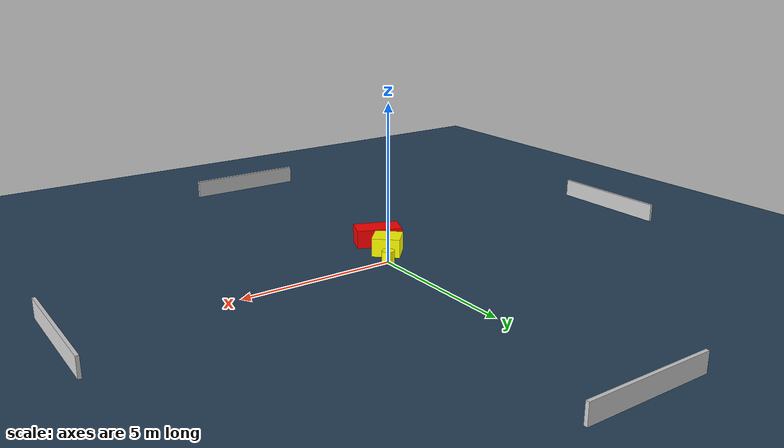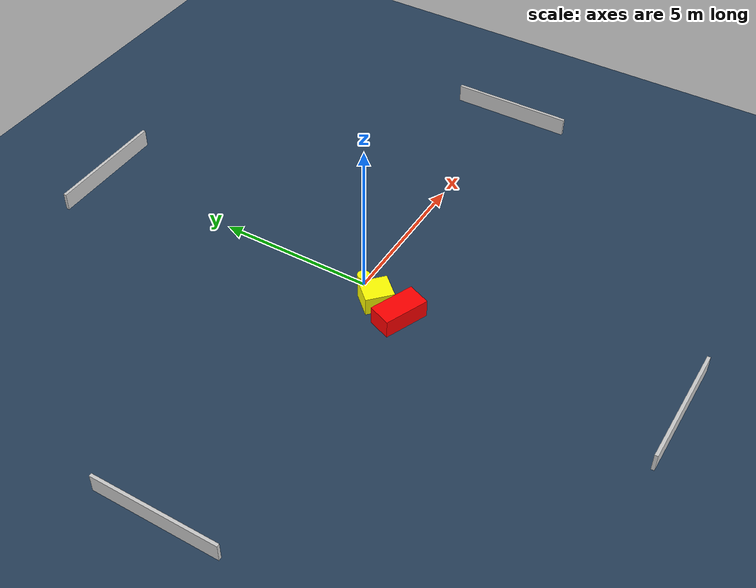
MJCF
<?xml version="1.0" ?>
<mujoco model="generated_environment">
  <option timestep="0.01" integrator="RK4" cone="elliptic"/>
  <default>
    <geom density="1"/>
  </default>
  <asset>
    <texture builtin="gradient" height="3072" name="skybox" rgb1="0.3 0.5 0.7" rgb2="0 0 0" type="skybox" width="512"/>
    <texture builtin="checker" height="300" name="groundplane" rgb1="0.2 0.3 0.4" rgb2="0.1 0.2 0.3" type="2d" width="300"/>
    <material name="groundplane" reflectance="0.2" texrepeat="5 5" texture="groundplane"/>
  </asset>
  <worldbody>
    <light dir="0 0 -1" directional="true" pos="0 0 1.5"/>
    <geom condim="3" friction="0.5 0.005 0.001" material="groundplane" name="floor" pos="0 0 0" size="0 0 0.05" type="plane"/>
    <body name="walls">
      <geom name="wall_1" condim="4" pos="-10.0 0.0 0.3" rgba="0.800000011920929 0.800000011920929 0.800000011920929 1.0" size="0.05 2.0 0.3" type="box"/>
      <geom name="wall_2" condim="4" pos="10.0 0.0 0.3" rgba="0.800000011920929 0.800000011920929 0.800000011920929 1.0" size="0.05 2.0 0.3" type="box"/>
      <geom name="wall_3" condim="4" pos="0.0 -10.0 0.3" rgba="0.800000011920929 0.800000011920929 0.800000011920929 1.0" size="2.0 0.05 0.3" type="box"/>
      <geom name="wall_4" condim="4" pos="0.0 10.0 0.3" rgba="0.800000011920929 0.800000011920929 0.800000011920929 1.0" size="2.0 0.05 0.3" type="box"/>
    </body>
    <body name="robot">
      <joint name="joint_x" type="slide" pos="0 0 0" axis="1 0 0"/>
      <joint name="joint_y" type="slide" pos="0 0 0" axis="0 1 0"/>
      <geom name="robot" type="cylinder" pos="0.0 0.0 0.2" size="0.2 0.2 0.0" mass="5.0" friction="1.0 0.005 0.0001" condim="4" rgba="1.0 1.0 0.0 1.0"/>
    </body>
    <body name="obstacle_1_movable">
      <geom name="obstacle_1_movable" condim="4" pos="-0.464237246260184 -0.712118580059627 0.3" euler="0 0 227.20830285338388" friction="0.0 0.005 0.001" rgba="1.0 1.0 0.0 1.0" size="0.4119177242604668 0.4520396101497229 0.3" type="box" mass="0.1"/>
      <joint type="free"/>
    </body>
    <body name="obstacle_2_static">
      <geom name="obstacle_2_static" condim="4" pos="-0.7063537039946804 -1.6317408961930915 0.3" euler="0 0 157.77785306928052" friction="0.0 0.005 0.001" rgba="1.0 0.0 0.0 1.0" size="0.7384107636452912 0.3814677593065595 0.3" type="box"/>
    </body>
  </worldbody>
  <actuator>
    <motor name="actuator_x" joint="joint_x" gear="1" ctrlrange="-1 1"/>
    <motor name="actuator_y" joint="joint_y" gear="1" ctrlrange="-1 1"/>
  </actuator>
</mujoco>
